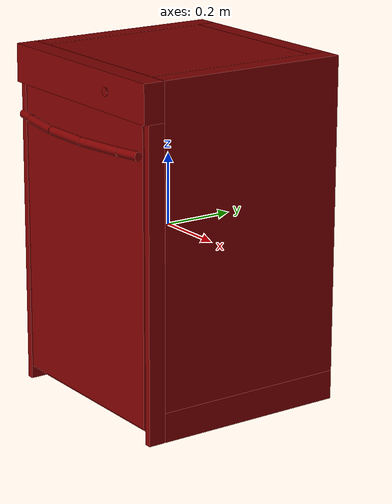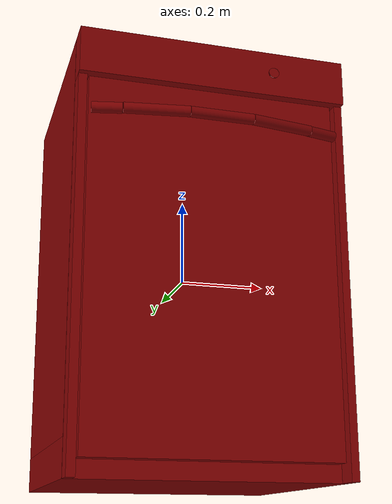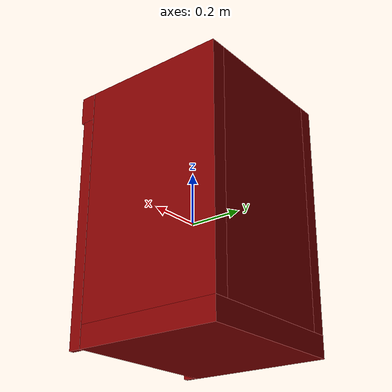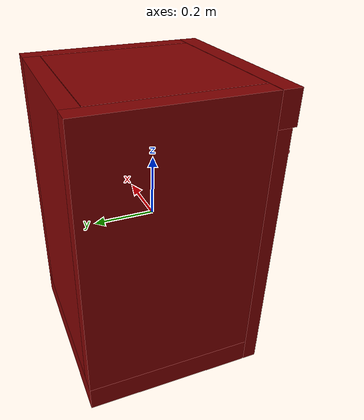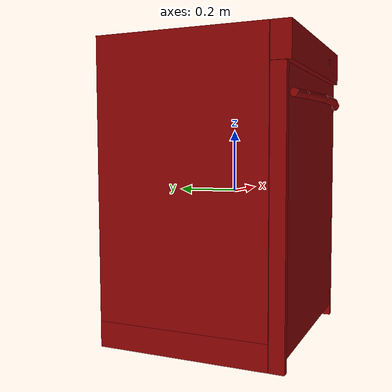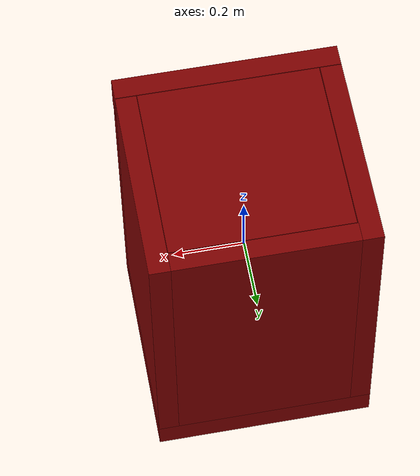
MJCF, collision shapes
<?xml version='1.0' encoding='UTF-8'?>
<mujoco model="model">
  <option timestep="0.002" gravity="0.0 0.0 -9.81"/>
  <compiler angle="radian"/>
  <asset>
    <mesh file="visuals/button_power.obj" name="button_power_vis"/>
    <mesh file="visuals/Body001.obj" name="Body001_vis"/>
    <mesh file="visuals/door.obj" name="door_vis"/>
    <mesh file="visuals/rack0.obj" name="rack0_vis"/>
    <mesh file="visuals/rack1.obj" name="rack1_vis"/>
    <texture file="visuals/T_BC001.png" name="Body001_material" type="2d"/>
    <material name="Body001_material" rgba="1 1 1 1.0" texture="Body001_material" shininess="0.1" specular="5"/>
    <texture file="visuals/T_BC001.png" name="button_power_material" type="2d"/>
    <material name="button_power_material" rgba="1 1 1 1.0" texture="button_power_material" shininess="0.1" specular="5"/>
    <texture file="visuals/T_BC001.png" name="door_material" type="2d"/>
    <material name="door_material" rgba="1 1 1 1.0" texture="door_material" shininess="0.1" specular="5"/>
    <texture file="visuals/T_BC001.png" name="rack0_material" type="2d"/>
    <material name="rack0_material" rgba="1 1 1 1.0" texture="rack0_material" shininess="0.1" specular="5"/>
    <texture file="visuals/T_BC001.png" name="rack1_material" type="2d"/>
    <material name="rack1_material" rgba="1 1 1 1.0" texture="rack1_material" shininess="0.1" specular="5"/>
  </asset>
  <default>
    <default class="visual">
      <geom conaffinity="0" contype="0" group="1" type="mesh"/>
    </default>
    <default class="collision">
      <geom group="0" rgba="0.5 0 0 0.5"/>
    </default>
    <default class="spawn">
      <geom group="0" rgba="1 1 1 0.5" contype="0" conaffinity="0"/>
      <site group="0" rgba="1 1 1 0.5"/>
    </default>
    <default class="region">
      <geom group="1" conaffinity="0" contype="0" rgba="0 1 0 0"/>
    </default>
  </default>
  <worldbody>
    <body>
      <body name="object">
        <geom mesh="Body001_vis" type="mesh" solimp="0.998 0.998 0.001" solref="0.001 1" friction="0.95 0.3 0.1" class="visual" material="Body001_material"/>
        <geom type="box" pos="0.00076117 0.02681435 0.37718119" size="0.24850206077098846 0.24785415828227997 0.10442158579826355" quat="1.0 0.0 0.0 0.0" class="collision"/>
        <geom type="box" pos="-0.00000002 0.05449539 -0.44043759" size="0.3087088465690613 0.2755352258682251 0.04116538166999817" quat="1.0 0.0 0.0 0.0" class="collision"/>
        <geom type="box" pos="0.27961263 0.05449537 0.04116543" size="0.0290962103754282 0.2755351662635803 0.4404376745223999" quat="1.0 0.0 0.0 0.0" class="collision"/>
        <geom type="box" pos="-0.27911824 0.05449538 0.04116543" size="0.029590575024485588 0.2755351662635803 0.4404376745223999" quat="1.0 0.0 0.0 0.0" class="collision"/>
        <geom type="box" pos="0.00000001 -0.25289860 0.42872300" size="0.3087087869644165 0.0299554243683815 0.05288010090589523" quat="1.0 0.0 0.0 0.0" class="collision"/>
        <geom type="box" pos="0.00020211 0.30311046 0.04116543" size="0.2507558763027191 0.02692018263041973 0.4404376745223999" quat="1.0 0.0 0.0 0.0" class="collision"/>
        <geom type="box" pos="0.29944500 -0.24635812 -0.05326203" size="0.009263802319765091 0.023414934054017067 0.4283409118652344" quat="1.0 0.0 0.0 0.0" class="collision"/>
        <geom type="box" pos="-0.29893932 -0.24635812 -0.05326203" size="0.009769458323717117 0.023414934054017067 0.4283409118652344" quat="1.0 0.0 0.0 0.0" class="collision"/>
        <geom type="box" pos="-0.24612612 0.04416118 -0.07005439" size="0.004066038876771927 0.23556995391845703 0.013230979442596436" quat="1.0 0.0 0.0 0.0" class="collision"/>
        <geom type="box" pos="-0.24283402 0.04416118 0.01919128" size="0.0073581296019256115 0.23556995391845703 0.013230979442596436" quat="1.0 0.0 0.0 0.0" class="collision"/>
        <geom type="box" pos="-0.24439001 0.04416118 -0.15272082" size="0.005802142899483442 0.23556995391845703 0.013230979442596436" quat="1.0 0.0 0.0 0.0" class="collision"/>
        <geom type="box" pos="-0.24283402 0.04416118 -0.26386742" size="0.0073581296019256115 0.23556995391845703 0.013230979442596436" quat="1.0 0.0 0.0 0.0" class="collision"/>
        <geom type="box" pos="-0.24669047 0.04416118 0.13500991" size="0.0035016799811273813 0.23556995391845703 0.013230979442596436" quat="1.0 0.0 0.0 0.0" class="collision"/>
        <geom type="box" pos="0.24658079 0.04416118 0.13500991" size="0.0024579952005296946 0.23556995391845703 0.013230979442596436" quat="1.0 0.0 0.0 0.0" class="collision"/>
        <geom type="box" pos="0.24168067 0.04416118 -0.26386742" size="0.0073581296019256115 0.23556995391845703 0.013230979442596436" quat="1.0 0.0 0.0 0.0" class="collision"/>
        <geom type="box" pos="0.24342251 0.04416118 -0.15272082" size="0.0073581296019256115 0.23556995391845703 0.013230979442596436" quat="1.0 0.0 0.0 0.0" class="collision"/>
        <geom type="box" pos="0.24281842 0.04416118 0.01919128" size="0.006220381241291761 0.23556995391845703 0.013230979442596436" quat="1.0 0.0 0.0 0.0" class="collision"/>
        <geom type="box" pos="0.24769396 0.04416118 -0.07005439" size="0.00360227026976645 0.23556995391845703 0.013230979442596436" quat="1.0 0.0 0.0 0.0" class="collision"/>
        <body name="button_power">
          <joint axis="0.0 1.0 0.0" pos="0.13701108 -0.28592425 0.43042897" limited="true" name="button_power_joint" range="0.0 0.002" type="slide" damping="1" frictionloss="1" armature=".01" stiffness="4" springref="-1"/>
          <geom mesh="button_power_vis" type="mesh" solimp="0.998 0.998 0.001" solref="0.001 1" friction="0.95 0.3 0.1" class="visual" material="button_power_material"/>
          <geom type="cylinder" pos="0.13689306 -0.28676483 0.43037724" size="0.012102506123483181 0.001343357376754284" quat="0.5000000596046448 0.5000000596046448 0.4999999403953552 -0.4999999701976776" class="collision"/>
        </body>
        <body name="door">
          <joint axis="1.0 0.0 0.0" pos="-0.00296337 -0.2684455312799787 -0.4427964109130859" limited="true" name="door_joint" range="0.0 0.5235987755982988" type="hinge" damping="1" frictionloss="10" armature="1" stiffness="2"/>
          <geom mesh="door_vis" type="mesh" solimp="0.998 0.998 0.001" solref="0.001 1" friction="0.95 0.3 0.1" class="visual" material="door_material"/>
          <geom class="collision" type="box" pos="-0.00296337 -0.24818356 -0.03551835" size="0.2825357913970947 0.020261971279978752 0.40727806091308594" quat="1.0 0.0 0.0 0.0" name="door_main"/>
          <geom class="collision" type="cylinder" pos="0.00048086 -0.31780812 0.29155310" size="0.011969594284892082 0.07225752621889114" quat="0.7071068286895752 1.2101618374060763e-08 0.7071067690849304 -1.2101617485882343e-08" name="door_handle_main"/>
          <geom class="collision" type="cylinder" pos="-0.14323731 -0.30782061 0.29155310" size="0.011969594284892082 0.07225753366947174" quat="0.7052760124206543 0.05085095390677452 0.7052759528160095 -0.05085095018148422" name="door_handle_3"/>
          <geom class="collision" type="cylinder" pos="0.14335266 -0.30714347 0.29155310" size="0.011969594284892082 0.07225753366947174" quat="0.705083429813385 -0.053454648703336716 0.7050833702087402 0.05345464497804642" name="door_handle_4"/>
          <geom class="collision" type="cylinder" pos="0.24510407 -0.28845453 0.29155310" size="0.011969594284892082 0.034941304475069046" quat="0.7034791111946106 -0.07153445482254028 0.7034790515899658 0.07153444737195969" name="door_handle_2"/>
          <geom class="collision" type="cylinder" pos="-0.24823989 -0.28860807 0.29155310" size="0.011969594284892082 0.03300582244992256" quat="0.7033578753471375 0.07271655648946762 0.7033578753471375 -0.07271656394004822" name="door_handle_1"/>
        </body>
        <body name="rack0">
          <geom class="region" name="reg_rack0" type="box" pos="-0.0029178649999999917 0.029724755000000005 -0.044764029999999996" size="0.214849505 0.20762393499999998 0.08045684"/>
          <joint axis="0.0 -1.0 0.0" pos="-0.00139529 0.02899239 -0.10771309" limited="true" name="rack0_joint" range="0.0 0.2" type="slide" damping="1" frictionloss="1" armature=".01" stiffness="0.05"/>
          <geom mesh="rack0_vis" type="mesh" solimp="0.998 0.998 0.001" solref="0.001 1" friction="0.95 0.3 0.1" class="visual" material="rack0_material"/>
          <geom type="box" pos="-0.11632642 0.02945987 -0.10900992" size="0.001964230090379715 0.17277030646800995 0.020945295691490173" quat="1.0 0.0 0.0 0.0" class="collision"/>
          <geom type="box" pos="-0.04124333 0.02945987 -0.10900992" size="0.001964230090379715 0.17277030646800995 0.020945295691490173" quat="1.0 0.0 0.0 0.0" class="collision"/>
          <geom type="box" pos="0.18358175 0.02945987 -0.10900992" size="0.001964230090379715 0.17277030646800995 0.020945295691490173" quat="1.0 0.0 0.0 0.0" class="collision"/>
          <geom type="box" pos="0.04634539 0.02945987 -0.10900992" size="0.001964230090379715 0.17277030646800995 0.020945295691490173" quat="1.0 0.0 0.0 0.0" class="collision"/>
          <geom type="box" pos="-0.23155345 0.03009673 -0.08719901" size="0.009216075763106346 0.21278487145900726 0.04275619611144066" quat="1.0 0.0 0.0 0.0" class="collision"/>
          <geom type="box" pos="-0.00085909 0.03162489 -0.14634331" size="0.23566462099552155 0.2143961638212204 0.016388092190027237" quat="1.0 0.0 0.0 0.0" class="collision"/>
          <geom type="box" pos="0.22750019 0.03009673 -0.08719901" size="0.010944942943751812 0.21278487145900726 0.04275619611144066" quat="1.0 0.0 0.0 0.0" class="collision"/>
          <geom type="box" pos="-0.00085909 -0.18777990 -0.10294191" size="0.23566462099552155 0.00503062317147851 0.059789493680000305" quat="1.0 0.0 0.0 0.0" class="collision"/>
          <geom type="box" pos="-0.19101034 0.02945987 -0.10900992" size="0.001964230090379715 0.17277030646800995 0.020945295691490173" quat="1.0 0.0 0.0 0.0" class="collision"/>
          <geom type="box" pos="-0.00085909 0.24712718 -0.10294191" size="0.23566462099552155 0.00503062317147851 0.059789493680000305" quat="1.0 0.0 0.0 0.0" class="collision"/>
        </body>
        <body name="rack1">
          <geom class="region" name="reg_rack1" type="box" pos="-0.0029178649999999917 0.029724755000000005 0.17257534500000002" size="0.214849505 0.20762393499999998 0.09478373500000001"/>
          <joint axis="0.0 -1.0 0.0" pos="-0.00139529 0.02899239 0.09853212" limited="true" name="rack1_joint" range="0.0 0.3" type="slide" damping="1" frictionloss="1" armature=".01" stiffness="0.05"/>
          <geom mesh="rack1_vis" type="mesh" solimp="0.998 0.998 0.001" solref="0.001 1" friction="0.95 0.3 0.1" class="visual" material="rack1_material"/>
          <geom type="box" pos="-0.00010871 0.24712718 0.09998515" size="0.23641499876976013 0.00503062317147851 0.059789493680000305" quat="1.0 0.0 0.0 0.0" class="collision"/>
          <geom type="box" pos="-0.00010871 -0.18777990 0.09998515" size="0.23641499876976013 0.00503062317147851 0.059789493680000305" quat="1.0 0.0 0.0 0.0" class="collision"/>
          <geom type="box" pos="0.22750019 0.03009673 0.11572804" size="0.010944942943751812 0.21278487145900726 0.04275619238615036" quat="1.0 0.0 0.0 0.0" class="collision"/>
          <geom type="box" pos="-0.00010871 0.03162489 0.05658375" size="0.23641499876976013 0.2143961638212204 0.016388097777962685" quat="1.0 0.0 0.0 0.0" class="collision"/>
          <geom type="box" pos="-0.23184159 0.03009673 0.11572804" size="0.009504221379756927 0.21278487145900726 0.04275619238615036" quat="1.0 0.0 0.0 0.0" class="collision"/>
          <geom type="box" pos="0.04634539 0.02945987 0.09391714" size="0.001964230090379715 0.17277030646800995 0.020945295691490173" quat="1.0 0.0 0.0 0.0" class="collision"/>
          <geom type="box" pos="0.18358175 0.02945987 0.09391714" size="0.001964230090379715 0.17277030646800995 0.020945295691490173" quat="1.0 0.0 0.0 0.0" class="collision"/>
          <geom type="box" pos="-0.04124333 0.02945987 0.09391714" size="0.001964230090379715 0.17277030646800995 0.020945295691490173" quat="1.0 0.0 0.0 0.0" class="collision"/>
          <geom type="box" pos="-0.11632642 0.02945987 0.09391714" size="0.001964230090379715 0.17277030646800995 0.020945295691490173" quat="1.0 0.0 0.0 0.0" class="collision"/>
          <geom type="box" pos="-0.19101034 0.02945987 0.09391714" size="0.001964230090379715 0.17277030646800995 0.020945295691490173" quat="1.0 0.0 0.0 0.0" class="collision"/>
        </body>
        <geom class="region" name="reg_int" type="box" pos="-0.0009871800000000042 0.028030954999999996 -0.06354784499999999" size="0.22999518 0.243523805 0.330906925"/>
        <geom class="region" name="reg_main" type="box" pos="1.4999999992104662e-08 0.022732244999999984 6.499999999354245e-08" size="0.309708785 0.308298305 0.482603025"/>
      </body>
    </body>
  </worldbody>
  <actuator>
    <motor name="button_power_joint_actuator" joint="button_power_joint" gear="0.5"/>
    <motor name="door_joint_actuator" joint="door_joint" gear="50"/>
    <motor name="rack0_joint_actuator" joint="rack0_joint" gear="50"/>
    <motor name="rack1_joint_actuator" joint="rack1_joint" gear="50"/>
  </actuator>
</mujoco>
